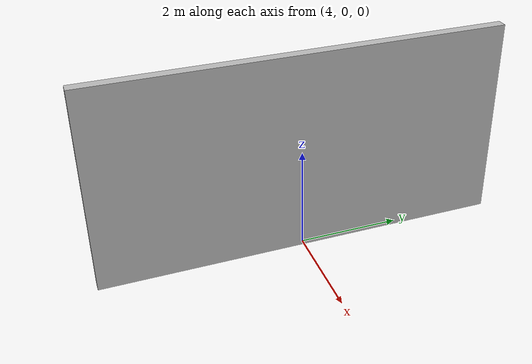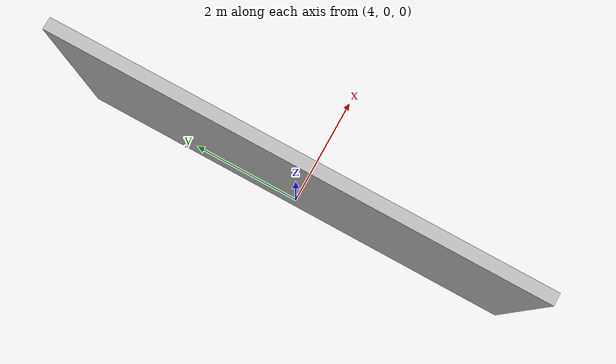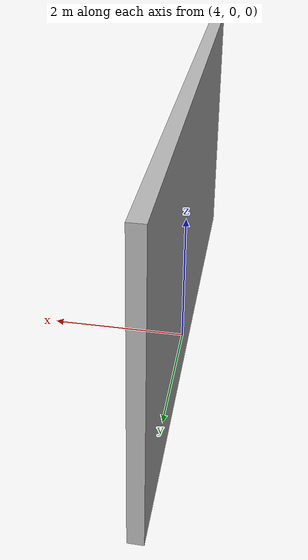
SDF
<?xml version="1.0"?>
<sdf version="1.9">
  <world name="parent_world">
    <physics name="physics" type="ignored"><max_step_size>0.001</max_step_size><real_time_factor>1</real_time_factor></physics>
    <plugin filename="gz-sim-physics-system" name="gz::sim::systems::Physics"/>
    <plugin filename="gz-sim-user-commands-system" name="gz::sim::systems::UserCommands"/>
    <plugin filename="gz-sim-scene-broadcaster-system" name="gz::sim::systems::SceneBroadcaster"/>
    <plugin filename="gz-sim-imu-system" name="gz::sim::systems::Imu"/>
    <plugin filename="RGLServerPluginManager" name="rgl::RGLServerPluginManager">
      <do_ignore_entities_in_lidar_link>true</do_ignore_entities_in_lidar_link>
    </plugin>
    <model name="wall"><static>true</static><pose>4 0 2 0 0 0</pose>
      <link name="wall">
        <visual name="wall"><geometry><box><size>0.2 8 4</size></box></geometry></visual>
        <collision name="wall"><geometry><box><size>0.2 8 4</size></box></geometry></collision>
      </link>
    </model>
  </world>
</sdf>
